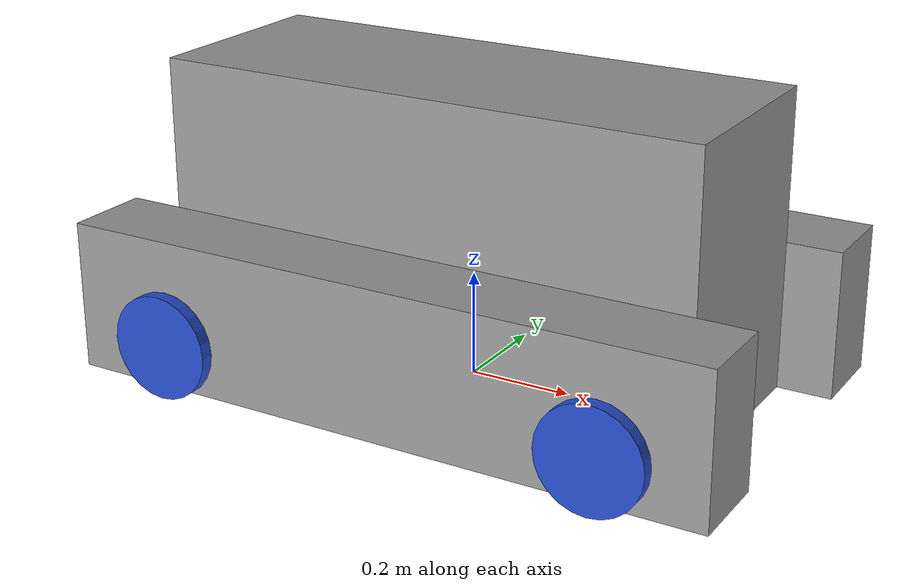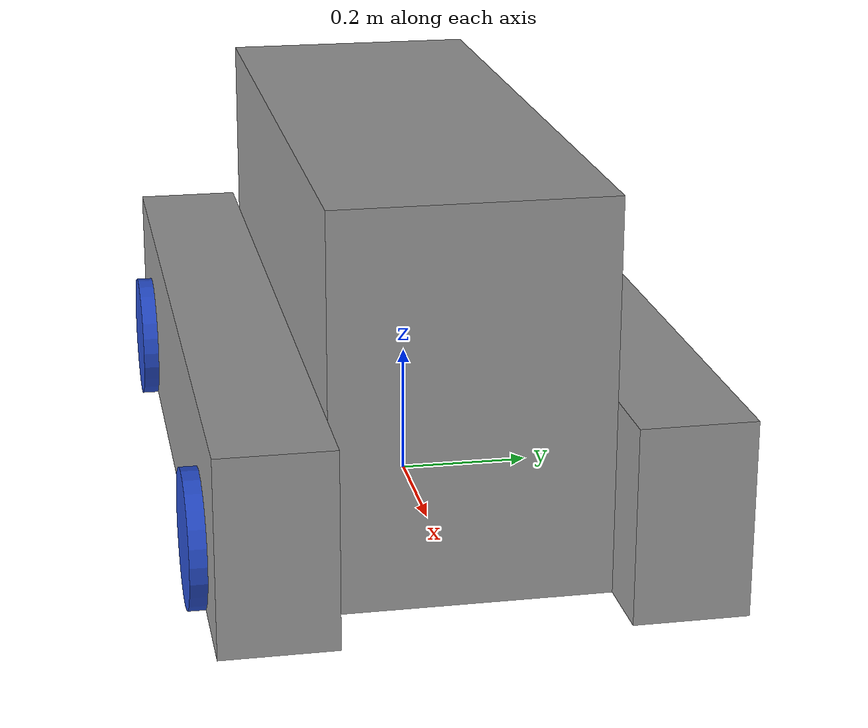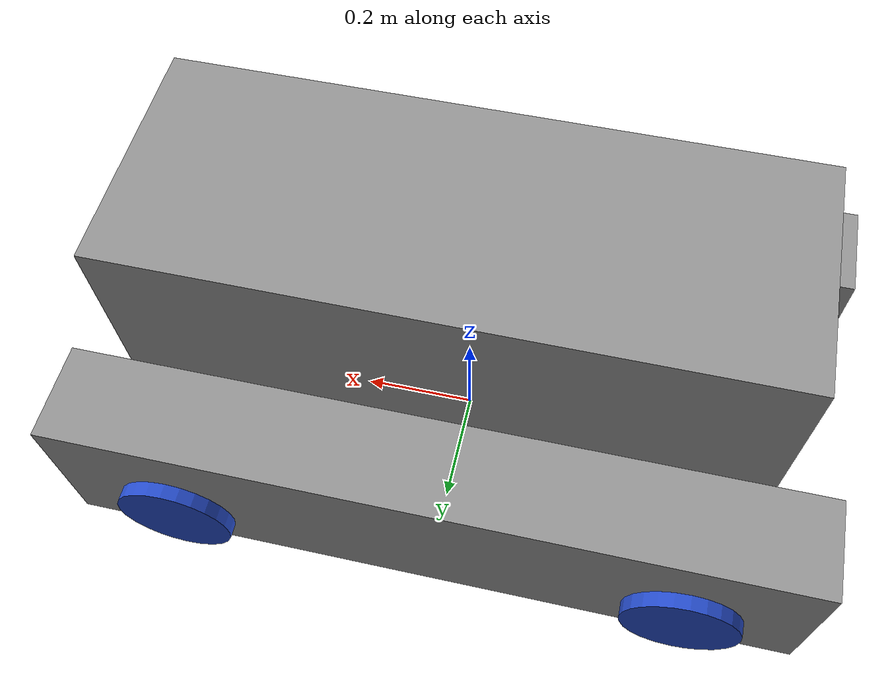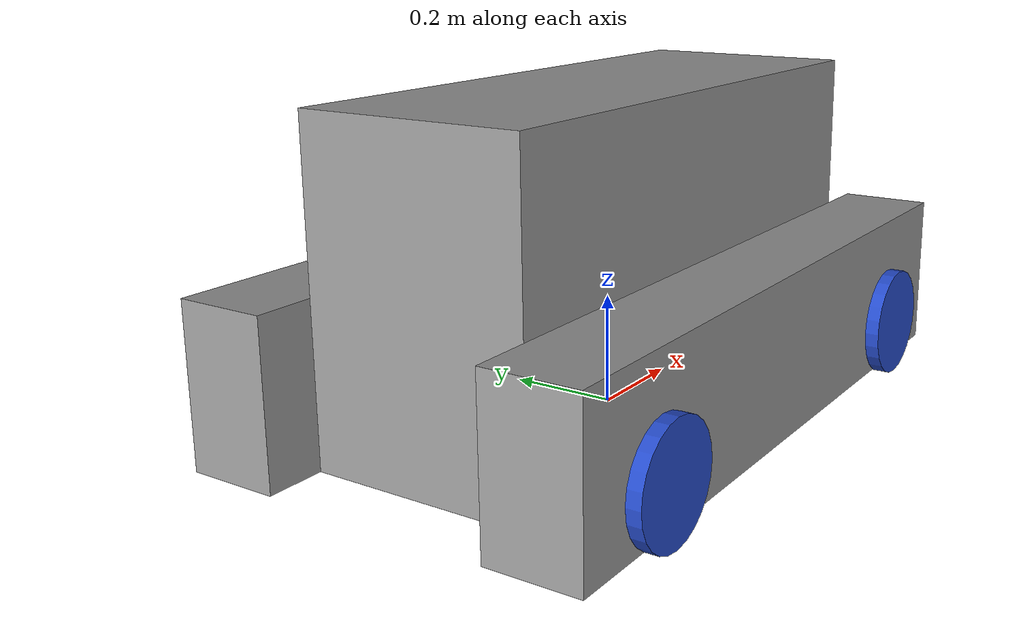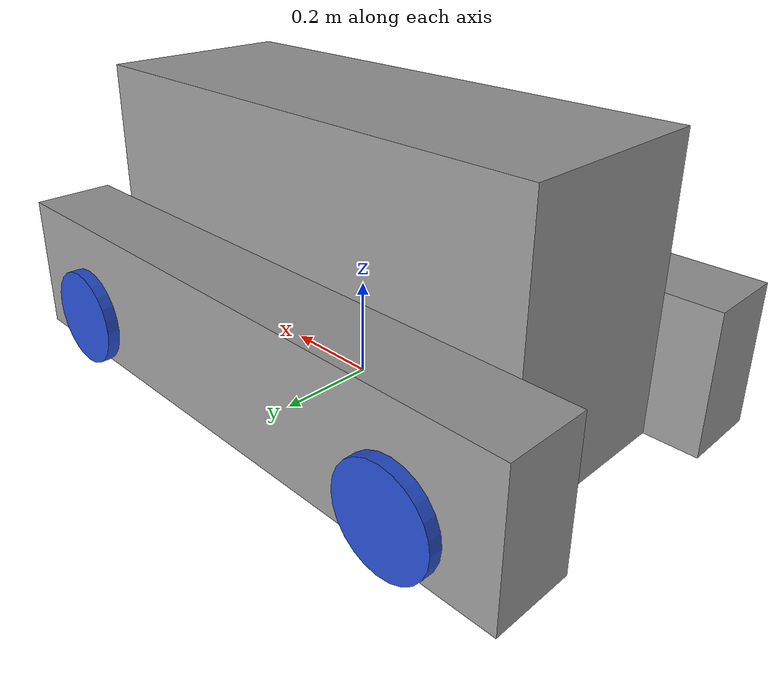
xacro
<?xml version="1.0"?>
<!-- Scara manipulator -->
<robot xmlns:xacro="http://www.ros.org/wiki/xacro" name="pdor_platform">

    <xacro:arg name="prefix" default=""/>

    <xacro:include filename="$(find pdor_description)/urdf/platform.macro.xacro" />
    <xacro:pdor_base prefix="$(arg prefix)"/>

    <xacro:include filename="$(find pdor_description)/urdf/platform.ros2_control.xacro" />
    <xacro:platform_ros2_control prefix="$(arg prefix)"/>

</robot>

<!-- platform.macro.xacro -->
<robot name = "platform" xmlns:xacro="http://www.ros.org/wiki/xacro">

<xacro:macro name="pdor_base" params="prefix">

  <link name="${prefix}base_footprint"/>

  <xacro:include filename="$(find pdor_description)/config/materials.urdf" />

<!-- Base structure -->

  <link name="${prefix}core">
    <visual>
      <geometry>
        <box size="${1.060} ${(0.730-(0.165*2))} ${(0.600-0.025)}"/>
      </geometry>
      <material name="grey"/>
    </visual>
    <collision>
      <geometry>
        <box size="${1.060} ${(0.730-(0.165*2))} ${(0.600-0.025)}"/>
      </geometry>
    </collision>
  </link>

  <link name="${prefix}barrier_right">
    <visual>
      <geometry>
        <box size="${1.270} ${(0.125+0.040)} ${(0.310-0.025)}"/>
      </geometry>
      <material name="grey"/>
    </visual>
    <collision>
      <geometry>
        <box size="${1.270} ${(0.125+0.040)} ${(0.310-0.025)}"/>
      </geometry>
    </collision>
  </link>

  <link name="${prefix}barrier_left">
    <visual>
      <geometry>
        <box size="${1.270} ${(0.125+0.040)} ${(0.310-0.025)}"/>
      </geometry>
      <material name="grey"/>
    </visual>
    <collision>
      <geometry>
        <box size="${1.270} ${(0.125+0.040)} ${(0.310-0.025)}"/>
      </geometry>
    </collision>
  </link>

  <joint name="move_core" type="fixed">
    <parent link="${prefix}base_footprint"/>
    <child link="${prefix}core"/>
    <origin xyz="0.0 0.0 ${(0.290+0.310)/2}"/>
  </joint>

  <joint name="move_barrier_right" type="fixed">
    <parent link="${prefix}core"/>
    <child link="${prefix}barrier_right"/>
    <origin xyz="0.0 ${-0.730/2+0.165/2} ${-(0.290+0.310)/2+(0.310)/2}"/>
  </joint>

  <joint name="move_barrier_left" type="fixed">
    <parent link="${prefix}core"/>
    <child link="${prefix}barrier_left"/>
    <origin xyz="0.0 ${+0.730/2-0.165/2} ${-(0.290+0.310)/2+(0.310)/2}"/>
  </joint>

<!-- Wheels -->

<link name="${prefix}front_axis"/>
<link name="${prefix}wheel_front_right">
  <visual>
    <geometry>
      <cylinder radius="0.100" length="0.100"/>
    </geometry>
    <material name="blue"/>
  </visual>
  <collision>
    <geometry>
      <cylinder radius="0.100" length="0.100"/>
    </geometry>
  </collision>
</link>
<link name="${prefix}wheel_front_left">
  <visual>
    <geometry>
      <cylinder radius="0.100" length="0.100"/>
    </geometry>
    <material name="blue"/>
  </visual>
  <collision>
    <geometry>
      <cylinder radius="0.100" length="0.100"/>
    </geometry>
  </collision>
</link>

<link name="${prefix}back_axis"/>
<link name="${prefix}wheel_rear_right">
  <visual>
    <geometry>
      <cylinder radius="0.100" length="0.100"/>
    </geometry>
    <material name="blue"/>
  </visual>
  <collision>
    <geometry>
      <cylinder radius="0.100" length="0.100"/>
    </geometry>
  </collision>
</link>
<link name="${prefix}wheel_rear_left">
  <visual>
    <geometry>
      <cylinder radius="0.100" length="0.100"/>
    </geometry>
    <material name="blue"/>
  </visual>
  <collision>
    <geometry>
      <cylinder radius="0.100" length="0.100"/>
    </geometry>
  </collision>
</link>

<joint name="${prefix}move_front_axis" type="fixed">
  <parent link="${prefix}base_footprint"/>
  <child link="${prefix}front_axis"/>
  <origin xyz="${1.270/2 - 0.20} ${0.0} ${0.10}"/>
</joint>
<joint name="${prefix}wheel_front_right_joint" type="continuous">
  <parent link="${prefix}front_axis"/>
  <child link="${prefix}wheel_front_right"/>
  <axis xyz="0 0 1"/>
  <origin xyz="0.0 ${-0.730/2 + 0.100/2 - 0.025} 0.0" rpy="${pi/2} 0.0 0.0"/>
</joint>
<joint name="${prefix}wheel_front_left_joint" type="continuous">
  <parent link="${prefix}front_axis"/>
  <child link="${prefix}wheel_front_left"/>
  <axis xyz="0 0 1"/>
  <origin xyz="0.0 ${0.730/2 - 0.100/2 + 0.025} 0.0" rpy="${-pi/2} 0.0 0.0"/>
</joint>

<joint name="${prefix}move_rear_axis" type="fixed">
  <parent link="${prefix}base_footprint"/>
  <child link="${prefix}back_axis"/>
  <origin xyz="${-1.270/2 + 0.20} ${0.0} ${0.10}"/>
</joint>
<joint name="${prefix}wheel_rear_right_joint" type="continuous">
  <parent link="${prefix}back_axis"/>
  <child link="${prefix}wheel_rear_right"/>
  <axis xyz="0 0 1"/>
  <origin xyz="0.0 ${-0.730/2 + 0.100/2 - 0.025} 0.0" rpy="${pi/2} 0.0 0.0"/>
</joint>
<joint name="${prefix}wheel_rear_left_joint" type="continuous">
  <parent link="${prefix}back_axis"/>
  <child link="${prefix}wheel_rear_left"/>
  <axis xyz="0 0 1"/>
  <origin xyz="0.0 ${0.730/2 - 0.100/2 + 0.025} 0.0" rpy="${-pi/2} 0.0 0.0"/>
</joint>

</xacro:macro>

</robot>
